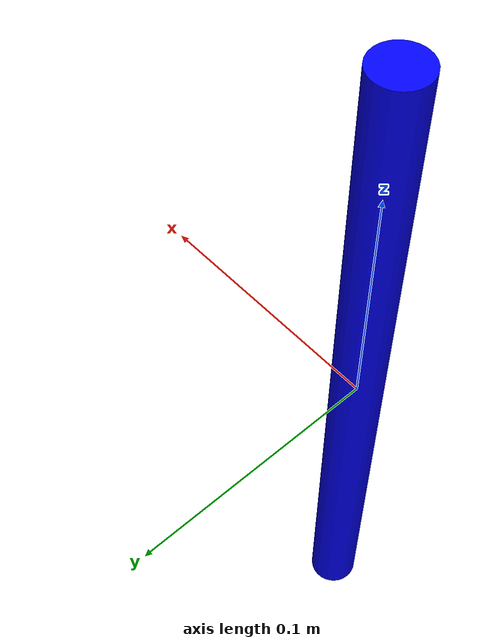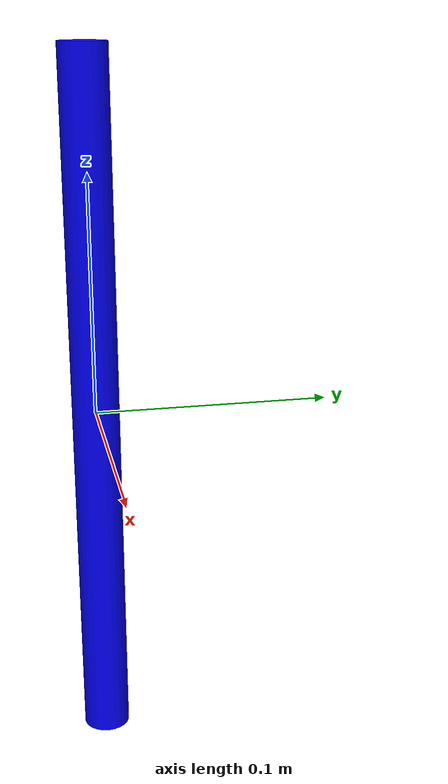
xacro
<?xml version="1.0"?>
<robot xmlns:xacro="http://ros.org/wiki/xacro" name="object_cylinder">

  <link name="cylinder_link">
    <!-- Visual for rendering -->
    <visual>
      <geometry>
        <cylinder radius="0.01" length="0.3"/>
      </geometry>
      <material name="blue">
        <color rgba="0 0 1 1"/>
      </material>
    </visual>

    <!-- Collision for physics -->
    <collision>
      <geometry>
        <cylinder radius="0.01" length="0.3"/>
      </geometry>
      <surface>
        <friction>
          <ode>
            <mu>100.0</mu>
            <mu2>100.0</mu2>
          </ode>
        </friction>
        <contact>
          <ode>
            <kp>1000.0</kp>
            <kd>1.0</kd>
            <max_vel>0.1</max_vel>
            <min_depth>0.01</min_depth>
          </ode>
        </contact>
      </surface>
    </collision>

    <!-- Inertial for dynamics -->
    <inertial>
      <mass value="0.2"/>
      <origin xyz="0 0 0" rpy="0 0 0"/>
      <inertia
        ixx="0.001"
        ixy="0.0"
        ixz="0.0"
        iyy="0.001"
        iyz="0.0"
        izz="0.0001"/>
    </inertial>
  </link>

  <gazebo reference="cylinder_link">
    <material>Gazebo/Blue</material>
  </gazebo>

</robot>
